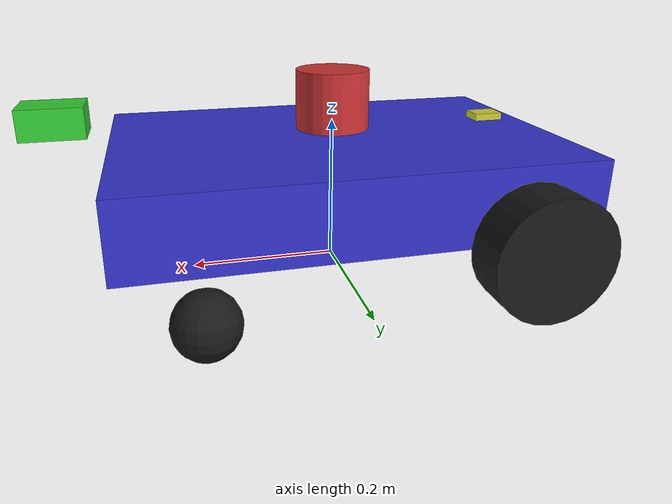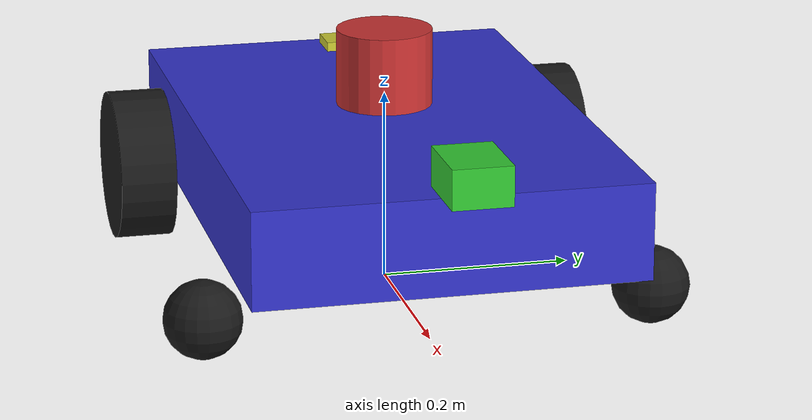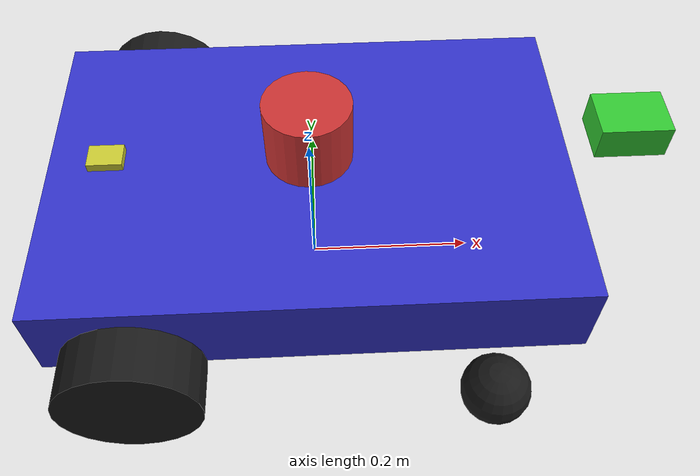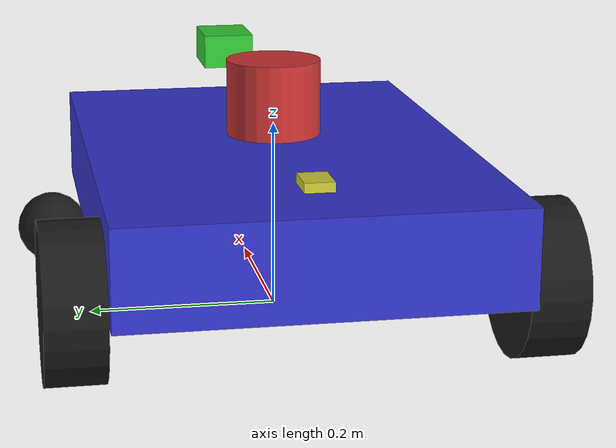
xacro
<?xml version="1.0"?>
<robot xmlns:xacro="http://www.ros.org/wiki/xacro" name="four_wheel_robot">

    <!-- 包含所有模块 Include all modules -->
    <xacro:include filename="$(find fishbot_description)/urdf/fishbot/base.urdf.xacro"/>
    <xacro:include filename="$(find fishbot_description)/urdf/fishbot/sensor/laser.urdf.xacro"/>
    <xacro:include filename="$(find fishbot_description)/urdf/fishbot/sensor/camera.urdf.xacro"/>
    <xacro:include filename="$(find fishbot_description)/urdf/fishbot/sensor/imu.urdf.xacro"/>
    <xacro:include filename="$(find fishbot_description)/urdf/fishbot/ros2_control.urdf.xacro"/>

    <!-- 实例化所有传感器 Instantiate all sensors -->
    <xacro:lidar_sensor parent="base_link"/>
    <xacro:camera_sensor parent="base_link"/>
    <xacro:imu_sensor parent="base_link"/>

    <!-- Gazebo 材料属性 -->
    <gazebo reference="base_link">
        <material>Gazebo/Blue</material>
    </gazebo>

    <gazebo reference="front_left_wheel">
        <material>Gazebo/Black</material>
        <mu1>1.0</mu1>
        <mu2>1.0</mu2>
        <kp>1000000.0</kp>
        <kd>100.0</kd>
        <minDepth>0.001</minDepth>
        <maxVel>1.0</maxVel>
    </gazebo>

    <gazebo reference="front_right_wheel">
        <material>Gazebo/Black</material>
        <mu1>1.0</mu1>
        <mu2>1.0</mu2>
        <kp>1000000.0</kp>
        <kd>100.0</kd>
        <minDepth>0.001</minDepth>
        <maxVel>1.0</maxVel>
    </gazebo>

    <gazebo reference="rear_left_wheel">
        <material>Gazebo/Black</material>
        <mu1>1.0</mu1>
        <mu2>1.0</mu2>
        <kp>1000000.0</kp>
        <kd>100.0</kd>
        <minDepth>0.001</minDepth>
        <maxVel>1.0</maxVel>
    </gazebo>

    <gazebo reference="rear_right_wheel">
        <material>Gazebo/Black</material>
        <mu1>1.0</mu1>
        <mu2>1.0</mu2>
        <kp>1000000.0</kp>
        <kd>100.0</kd>
        <minDepth>0.001</minDepth>
        <maxVel>1.0</maxVel>
    </gazebo>

</robot>

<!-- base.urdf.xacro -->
<robot xmlns:xacro="http://www.ros.org/wiki/xacro" name="four_wheel_robot_base">

    <!-- 属性定义 Properties -->
    <xacro:property name="chassis_length" value="0.6" />
    <xacro:property name="chassis_width" value="0.4" />
    <xacro:property name="chassis_height" value="0.1" />
    <xacro:property name="chassis_mass" value="10.0" />

    <xacro:property name="wheel_radius" value="0.08" />
    <xacro:property name="wheel_length" value="0.06" />
    <xacro:property name="wheel_mass" value="1.0" />
    <xacro:property name="wheel_offset_x" value="0.2" />
    <xacro:property name="wheel_offset_y" value="0.23" />

    <!-- 万向轮属性 -->
    <xacro:property name="caster_radius" value="0.04" />
    <xacro:property name="caster_mass" value="0.5" />

    <!-- 材料定义 Materials -->
    <material name="chassis_material">
        <color rgba="0.2 0.2 0.8 1.0"/>
    </material>

    <material name="wheel_material">
        <color rgba="0.1 0.1 0.1 1.0"/>
    </material>

    <!-- 惯性矩阵计算宏 Inertial Macro -->
    <xacro:macro name="box_inertial" params="mass x y z">
        <inertial>
            <origin xyz="0 0 0" rpy="0 0 0"/>
            <mass value="${mass}"/>
            <inertia ixx="${mass*(y*y+z*z)/12}" ixy="0" ixz="0"
                     iyy="${mass*(x*x+z*z)/12}" iyz="0"
                     izz="${mass*(x*x+y*y)/12}"/>
        </inertial>
    </xacro:macro>

    <xacro:macro name="cylinder_inertial" params="mass radius height">
        <inertial>
            <origin xyz="0 0 0" rpy="0 0 0"/>
            <mass value="${mass}"/>
            <inertia ixx="${mass*(3*radius*radius+height*height)/12}" ixy="0" ixz="0"
                     iyy="${mass*(3*radius*radius+height*height)/12}" iyz="0"
                     izz="${mass*radius*radius/2}"/>
        </inertial>
    </xacro:macro>

    <!-- 虚拟的base_footprint链接 -->
    <link name="base_footprint">
    </link>

    <!-- 机器人底盘 Base Link -->
    <link name="base_link">
        <visual>
            <origin xyz="0 0 0" rpy="0 0 0"/>
            <geometry>
                <box size="${chassis_length} ${chassis_width} ${chassis_height}"/>
            </geometry>
            <material name="chassis_material"/>
        </visual>
        <collision>
            <origin xyz="0 0 0" rpy="0 0 0"/>
            <geometry>
                <box size="${chassis_length} ${chassis_width} ${chassis_height}"/>
            </geometry>
        </collision>
        <xacro:box_inertial mass="${chassis_mass}"
                           x="${chassis_length}"
                           y="${chassis_width}"
                           z="${chassis_height}"/>
    </link>

    <!-- base_footprint到base_link的关节 -->
    <joint name="base_footprint_joint" type="fixed">
        <parent link="base_footprint"/>
        <child link="base_link"/>
        <origin xyz="0 0 ${wheel_radius + chassis_height/2}" rpy="0 0 0"/>
    </joint>

    <!-- 后轮宏定义（驱动轮） -->
    <xacro:macro name="rear_wheel" params="prefix x_pos y_pos">
        <link name="${prefix}_wheel">
            <visual>
                <origin xyz="0 0 0" rpy="1.5708 0 0"/>
                <geometry>
                    <cylinder radius="${wheel_radius}" length="${wheel_length}"/>
                </geometry>
                <material name="wheel_material"/>
            </visual>
            <collision>
                <origin xyz="0 0 0" rpy="1.5708 0 0"/>
                <geometry>
                    <cylinder radius="${wheel_radius}" length="${wheel_length}"/>
                </geometry>
            </collision>
            <inertial>
                <origin xyz="0 0 0" rpy="1.5708 0 0"/>
                <mass value="${wheel_mass}"/>
                <inertia ixx="0.003" ixy="0" ixz="0"
                         iyy="0.003" iyz="0" izz="0.005"/>
            </inertial>
        </link>

        <joint name="${prefix}_wheel_joint" type="continuous">
            <parent link="base_link"/>
            <child link="${prefix}_wheel"/>
            <origin xyz="${x_pos} ${y_pos} ${-chassis_height/2}" rpy="0 0 0"/>
            <axis xyz="0 1 0"/>
            <dynamics damping="0.1" friction="0.1"/>
        </joint>
    </xacro:macro>

    <!-- 万向轮宏定义（前轮） -->
    <xacro:macro name="caster_wheel" params="prefix x_pos y_pos">
        <!-- 使用球形万向轮 -->
        <link name="${prefix}_caster_wheel">
            <visual>
                <origin xyz="0 0 0" rpy="0 0 0"/>
                <geometry>
                    <sphere radius="${caster_radius}"/>
                </geometry>
                <material name="wheel_material"/>
            </visual>
            <collision>
                <origin xyz="0 0 0" rpy="0 0 0"/>
                <geometry>
                    <sphere radius="${caster_radius}"/>
                </geometry>
                <surface>
                    <friction>
                        <ode>
                            <mu>0.01</mu>
                            <mu2>0.01</mu2>
                        </ode>
                    </friction>
                </surface>
            </collision>
            <inertial>
                <origin xyz="0 0 0" rpy="0 0 0"/>
                <mass value="${caster_mass}"/>
                <inertia ixx="${2*caster_mass*caster_radius*caster_radius/5}" ixy="0" ixz="0"
                         iyy="${2*caster_mass*caster_radius*caster_radius/5}" iyz="0"
                         izz="${2*caster_mass*caster_radius*caster_radius/5}"/>
            </inertial>
        </link>

        <joint name="${prefix}_caster_joint" type="fixed">
            <parent link="base_link"/>
            <child link="${prefix}_caster_wheel"/>
            <!-- 调整高度以匹配后轮接触地面 -->
            <origin xyz="${x_pos} ${y_pos} ${-chassis_height/2 - wheel_radius + caster_radius}" rpy="0 0 0"/>
        </joint>

        <!-- Gazebo配置 -->
        <gazebo reference="${prefix}_caster_wheel">
            <material>Gazebo/Black</material>
            <mu1>0.01</mu1>
            <mu2>0.01</mu2>
            <kp>1000000.0</kp>
            <kd>100.0</kd>
            <minDepth>0.001</minDepth>
            <maxVel>1.0</maxVel>
        </gazebo>
    </xacro:macro>

    <!-- 创建两个后轮（驱动轮） -->
    <xacro:rear_wheel prefix="rear_left" x_pos="${-wheel_offset_x}" y_pos="${wheel_offset_y}"/>
    <xacro:rear_wheel prefix="rear_right" x_pos="${-wheel_offset_x}" y_pos="${-wheel_offset_y}"/>

    <!-- 创建两个前轮（万向轮） -->
    <xacro:caster_wheel prefix="front_left" x_pos="${wheel_offset_x}" y_pos="${wheel_offset_y}"/>
    <xacro:caster_wheel prefix="front_right" x_pos="${wheel_offset_x}" y_pos="${-wheel_offset_y}"/>

</robot>

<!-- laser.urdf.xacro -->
<robot xmlns:xacro="http://www.ros.org/wiki/xacro" name="four_wheel_robot_laser">

    <!-- 激光雷达属性 Lidar Properties -->
    <xacro:property name="lidar_radius" value="0.05" />
    <xacro:property name="lidar_height" value="0.08" />
    <xacro:property name="lidar_mass" value="0.5" />
    <xacro:property name="chassis_height" value="0.1" />

    <!-- 激光雷达材料 Lidar Material -->
    <material name="lidar_material">
        <color rgba="0.8 0.2 0.2 1.0"/>
    </material>

    <!-- 激光雷达宏定义 Lidar Macro -->
    <xacro:macro name="lidar_sensor" params="parent">
        <link name="lidar_link">
            <visual>
                <origin xyz="0 0 0" rpy="0 0 0"/>
                <geometry>
                    <cylinder radius="${lidar_radius}" length="${lidar_height}"/>
                </geometry>
                <material name="lidar_material"/>
            </visual>
            <collision>
                <origin xyz="0 0 0" rpy="0 0 0"/>
                <geometry>
                    <cylinder radius="${lidar_radius}" length="${lidar_height}"/>
                </geometry>
            </collision>
            <inertial>
                <origin xyz="0 0 0" rpy="0 0 0"/>
                <mass value="${lidar_mass}"/>
                <inertia ixx="${lidar_mass*(3*lidar_radius*lidar_radius+lidar_height*lidar_height)/12}" ixy="0" ixz="0"
                         iyy="${lidar_mass*(3*lidar_radius*lidar_radius+lidar_height*lidar_height)/12}" iyz="0"
                         izz="${lidar_mass*lidar_radius*lidar_radius/2}"/>
            </inertial>
        </link>

        <!-- 激光雷达关节 Lidar Joint - 位于车子中央上方 -->
        <joint name="lidar_joint" type="fixed">
            <parent link="${parent}"/>
            <child link="lidar_link"/>
            <!-- 修正：相对于base_link中心，向上偏移半个chassis高度和半个lidar高度 -->
            <origin xyz="0 0 ${chassis_height/2 + lidar_height/2 + 0.01}" rpy="0 0 0"/>
        </joint>

        <!-- Gazebo 激光雷达插件 -->
        <gazebo reference="lidar_link">
            <sensor type="ray" name="lidar_sensor">
                <pose>0 0 0 0 0 0</pose>
                <visualize>true</visualize>
                <update_rate>40</update_rate>
                <ray>
                    <scan>
                        <horizontal>
                            <samples>720</samples>
                            <resolution>1</resolution>
                            <min_angle>-3.14159</min_angle>
                            <max_angle>3.14159</max_angle>
                        </horizontal>
                    </scan>
                    <range>
                        <min>0.12</min>
                        <max>30.0</max>
                        <resolution>0.015</resolution>
                    </range>
                    <noise>
                        <type>gaussian</type>
                        <mean>0.0</mean>
                        <stddev>0.01</stddev>
                    </noise>
                </ray>
                <plugin name="gazebo_ros_lidar_controller" filename="libgazebo_ros_ray_sensor.so">
                    <ros>
                        <namespace>/robot</namespace>
                        <!-- 使用新的remap语法 -->
                        <remapping>~/out:=/robot/scan</remapping>
                    </ros>
                    <output_type>sensor_msgs/LaserScan</output_type>
                    <frame_name>lidar_link</frame_name>
                </plugin>
            </sensor>
        </gazebo>
    </xacro:macro>

</robot>

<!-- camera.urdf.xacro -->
<robot xmlns:xacro="http://www.ros.org/wiki/xacro" name="four_wheel_robot_camera">

    <!-- 摄像头属性 Camera Properties -->
    <xacro:property name="camera_length" value="0.08" />
    <xacro:property name="camera_width" value="0.06" />
    <xacro:property name="camera_height" value="0.04" />
    <xacro:property name="camera_mass" value="0.3" />
    <xacro:property name="chassis_height" value="0.1" />
    <xacro:property name="chassis_length" value="0.6" />

    <!-- 摄像头材料 Camera Material -->
    <material name="camera_material">
        <color rgba="0.2 0.8 0.2 1.0"/>
    </material>

    <!-- 摄像头宏定义 Camera Macro -->
    <xacro:macro name="camera_sensor" params="parent">
        <link name="camera_link">
            <visual>
                <origin xyz="0 0 0" rpy="0 0 0"/>
                <geometry>
                    <box size="${camera_length} ${camera_width} ${camera_height}"/>
                </geometry>
                <material name="camera_material"/>
            </visual>
            <collision>
                <origin xyz="0 0 0" rpy="0 0 0"/>
                <geometry>
                    <box size="${camera_length} ${camera_width} ${camera_height}"/>
                </geometry>
            </collision>
            <inertial>
                <origin xyz="0 0 0" rpy="0 0 0"/>
                <mass value="${camera_mass}"/>
                <inertia ixx="${camera_mass*(camera_width*camera_width+camera_height*camera_height)/12}" ixy="0" ixz="0"
                         iyy="${camera_mass*(camera_length*camera_length+camera_height*camera_height)/12}" iyz="0"
                         izz="${camera_mass*(camera_length*camera_length+camera_width*camera_width)/12}"/>
            </inertial>
        </link>

        <!-- 摄像头关节 Camera Joint - 位于车子前方 -->
        <joint name="camera_joint" type="fixed">
            <parent link="${parent}"/>
            <child link="camera_link"/>
            <!-- 修正：base_link的中心在chassis_height/2的位置，所以相机只需要在此基础上偏移 -->
            <origin xyz="${chassis_length/2 + camera_length/2 + 0.02} 0 ${chassis_height/2 + camera_height/2 + 0.02}" rpy="0 0 0"/>
        </joint>

        <!-- 摄像头光学框架 Camera Optical Frame -->
        <link name="camera_optical_link">
        </link>

        <joint name="camera_optical_joint" type="fixed">
            <parent link="camera_link"/>
            <child link="camera_optical_link"/>
            <origin xyz="0 0 0" rpy="-1.5708 0 -1.5708"/>
        </joint>

        <!-- Gazebo 摄像头插件 -->
        <gazebo reference="camera_link">
            <sensor type="camera" name="camera_sensor">
                <update_rate>30.0</update_rate>
                <camera name="head">
                    <horizontal_fov>1.3962634</horizontal_fov>
                    <image>
                        <width>800</width>
                        <height>600</height>
                        <format>R8G8B8</format>
                    </image>
                    <clip>
                        <near>0.02</near>
                        <far>300</far>
                    </clip>
                    <noise>
                        <type>gaussian</type>
                        <mean>0.0</mean>
                        <stddev>0.007</stddev>
                    </noise>
                </camera>
                <plugin name="camera_controller" filename="libgazebo_ros_camera.so">
                    <ros>
                        <namespace>/robot</namespace>
                        <!-- 使用新的remap语法 -->
                        <remapping>~/image_raw:=/robot/camera/image_raw</remapping>
                        <remapping>~/camera_info:=/robot/camera/camera_info</remapping>
                    </ros>
                    <camera_name>camera</camera_name>
                    <frame_name>camera_optical_link</frame_name>
                    <hack_baseline>0.07</hack_baseline>
                </plugin>
            </sensor>
        </gazebo>
    </xacro:macro>

</robot>

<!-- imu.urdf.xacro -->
<robot xmlns:xacro="http://www.ros.org/wiki/xacro" name="four_wheel_robot_imu">

    <!-- IMU属性 IMU Properties -->
    <xacro:property name="imu_length" value="0.04" />
    <xacro:property name="imu_width" value="0.03" />
    <xacro:property name="imu_height" value="0.01" />
    <xacro:property name="imu_mass" value="0.1" />
    <xacro:property name="chassis_height" value="0.1" />
    <xacro:property name="chassis_length" value="0.6" />

    <!-- IMU材料 IMU Material -->
    <material name="imu_material">
        <color rgba="0.8 0.8 0.2 1.0"/>
    </material>

    <!-- IMU宏定义 IMU Macro -->
    <xacro:macro name="imu_sensor" params="parent">
        <link name="imu_link">
            <visual>
                <origin xyz="0 0 0" rpy="0 0 0"/>
                <geometry>
                    <box size="${imu_length} ${imu_width} ${imu_height}"/>
                </geometry>
                <material name="imu_material"/>
            </visual>
            <collision>
                <origin xyz="0 0 0" rpy="0 0 0"/>
                <geometry>
                    <box size="${imu_length} ${imu_width} ${imu_height}"/>
                </geometry>
            </collision>
            <inertial>
                <origin xyz="0 0 0" rpy="0 0 0"/>
                <mass value="${imu_mass}"/>
                <inertia ixx="${imu_mass*(imu_width*imu_width+imu_height*imu_height)/12}" ixy="0" ixz="0"
                         iyy="${imu_mass*(imu_length*imu_length+imu_height*imu_height)/12}" iyz="0"
                         izz="${imu_mass*(imu_length*imu_length+imu_width*imu_width)/12}"/>
            </inertial>
        </link>

        <!-- IMU关节 IMU Joint - 位于车子后方上方 -->
        <joint name="imu_joint" type="fixed">
            <parent link="${parent}"/>
            <child link="imu_link"/>
            <!-- 修正：相对于base_link中心，向上偏移半个chassis高度和半个imu高度 -->
            <origin xyz="${-chassis_length/2 + imu_length/2 + 0.05} 0 ${chassis_height/2 + imu_height/2 + 0.01}" rpy="0 0 0"/>
        </joint>

        <!-- Gazebo IMU插件 -->
        <gazebo reference="imu_link">
            <gravity>true</gravity>
            <sensor name="imu_sensor" type="imu">
                <always_on>true</always_on>
                <update_rate>100</update_rate>
                <visualize>true</visualize>
                <topic>__default_topic__</topic>
                <plugin filename="libgazebo_ros_imu_sensor.so" name="imu_plugin">
                    <ros>
                        <namespace>/robot</namespace>
                        <!-- 使用新的remap语法 -->
                        <remapping>~/out:=/robot/imu</remapping>
                    </ros>
                    <initial_orientation_as_reference>false</initial_orientation_as_reference>
                </plugin>
                <pose>0 0 0 0 0 0</pose>
            </sensor>
        </gazebo>
    </xacro:macro>

</robot>
